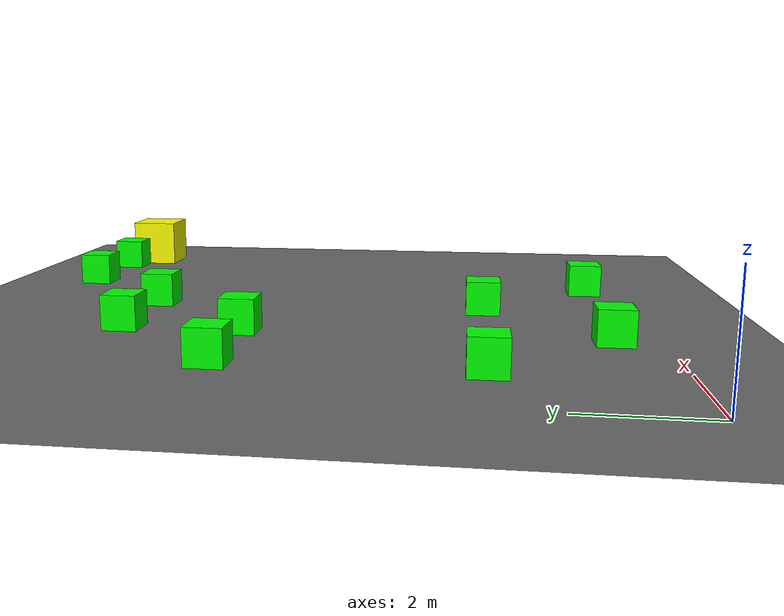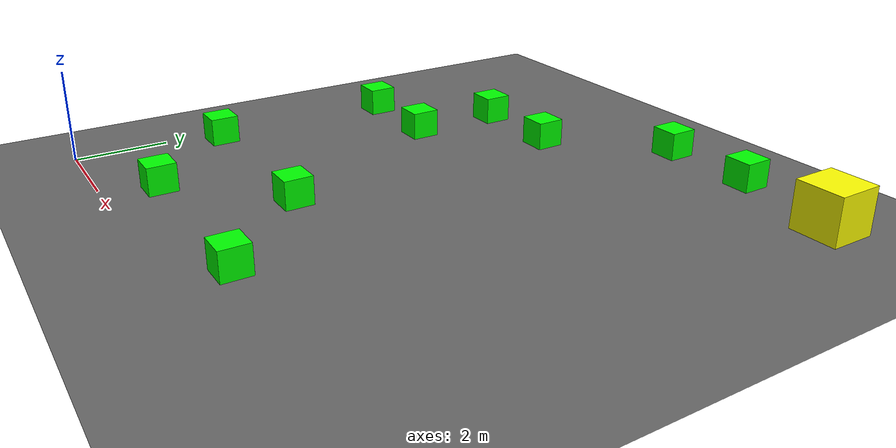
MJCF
<mujoco model="simple_navigation">
    <compiler angle="degree" coordinate="local" inertiafromgeom="true"/>
    <option integrator="RK4" timestep="0.01"/>

    <asset>
        <texture builtin="gradient" height="100" rgb1="0.6 0.8 1" rgb2="0 0 0" type="skybox" width="100"/>
        <texture name="floor_texture" type="2d" builtin="checker" width="100" height="100" rgb1="0 0 0" rgb2="0.8 0.8 0.8"/>
        <material name="MatPlane" reflectance="0.5" shininess="1" specular="1" texrepeat="10 10" texture="floor_texture"/>
    </asset>

    <!-- Excluding the contact between the agent and the goal, and the agent and the floor -->
    <contact>
        <exclude body1="agent" body2="goal"/>
        <exclude body1 = "agent" body2 = "floor"/>
    </contact>

    <extension>
        <plugin plugin = "mujoco.pid">
            <instance name = "pid1">
                <config key="kp" value="2"/>
                <config key="ki" value="0"/>
                <config key="kd" value="55"/>
            </instance>
        </plugin>
    </extension>

    <worldbody>
        <light cutoff="100" diffuse="1 1 1" dir="-0 0 -1.3" directional="true" exponent="1" pos="0 0 1.3" specular=".1 .1 .1"/>
        <body name="floor" pos="0 0 0">
            <geom name="floor_geom" type="plane" size="20 20 0.1" material="MatPlane"/>
        </body>

        <body name="goal" pos="0.0 0.0 0">
            <geom name="goal_geom" type="plane" size="0.5 0.5 1" pos="0 0 0" rgba="1 0 0 1"/>
        </body>

        <body name="agent" pos="11.0 11.0 0.5">
            <joint name="j1" type="slide" axis ="1 0 0 "/>
            <joint name="j2" type="slide" axis ="0 1 0 "/>
            <geom name="agent_geom" type="box" size="0.5 0.5 0.5" rgba="1 1 0 1"/>
        </body>

        <body name="obstacle1" pos="5.0 3.0 0.5">
            <geom name="obstacle1_geom" type="box" size="0.3 0.3 0.3" rgba="0 1 0 1"/>
        </body>

        <body name="obstacle2" pos="1.0 3.0 0.5">
            <geom name="obstacle2_geom" type="box" size="0.3 0.3 0.3" rgba="0 1 0 1"/>
        </body>

        <body name="obstacle3" pos="3.0 9.0 0.5">
            <geom name="obstacle3_geom" type="box" size="0.3 0.3 0.3" rgba="0 1 0 1"/>
        </body>

        <body name="obstacle4" pos="7.0 11.0 0.5">
            <geom name="obstacle4_geom" type="box" size="0.3 0.3 0.3" rgba="0 1 0 1"/>
        </body>

        <body name="obstacle5" pos="5.0 9.0 0.5">
            <geom name="obstacle5_geom" type="box" size="0.3 0.3 0.3" rgba="0 1 0 1"/>
        </body>

        <body name="obstacle6" pos="3.0 7.0 0.5">
            <geom name="obstacle6_geom" type="box" size="0.3 0.3 0.3" rgba="0 1 0 1"/>
        </body>

        <body name="obstacle7" pos="3.0 1.0 0.5">
            <geom name="obstacle7_geom" type="box" size="0.3 0.3 0.3" rgba="0 1 0 1"/>
        </body>

        <body name="obstacle8" pos="9.0 11.0 0.5">
            <geom name="obstacle8_geom" type="box" size="0.3 0.3 0.3" rgba="0 1 0 1"/>
        </body>

        <body name="obstacle9" pos="7.0 1.0 0.5">
            <geom name="obstacle9_geom" type="box" size="0.3 0.3 0.3" rgba="0 1 0 1"/>
        </body>

        <body name="obstacle10" pos="1.0 7.0 0.5">
            <geom name="obstacle10_geom" type="box" size="0.3 0.3 0.3" rgba="0 1 0 1"/>
        </body>

    </worldbody>

    <sensor>
        <distance name="dist1" geom1="agent_geom" geom2="obstacle1_geom" cutoff="1.5"/>
        <distance name="dist2" geom1="agent_geom" geom2="obstacle2_geom" cutoff="1.5"/>
        <distance name="dist3" geom1="agent_geom" geom2="obstacle3_geom" cutoff="1.5"/>
        <distance name="dist4" geom1="agent_geom" geom2="obstacle4_geom" cutoff="1.5"/>
        <distance name="dist5" geom1="agent_geom" geom2="obstacle5_geom" cutoff="1.5"/>
        <distance name="dist6" geom1="agent_geom" geom2="obstacle6_geom" cutoff="1.5"/>
        <distance name="dist7" geom1="agent_geom" geom2="obstacle7_geom" cutoff="1.5"/>
        <distance name="dist8" geom1="agent_geom" geom2="obstacle8_geom" cutoff="1.5"/>
        <distance name="dist9" geom1="agent_geom" geom2="obstacle9_geom" cutoff="1.5"/>
        <distance name="dist10" geom1="agent_geom" geom2="obstacle10_geom" cutoff="1.5"/>
    </sensor>

    <actuator>
        <plugin joint="j1" plugin="mujoco.pid" instance="pid1" />
        <plugin joint="j2" plugin="mujoco.pid" instance="pid1"/>
    </actuator>
</mujoco>
